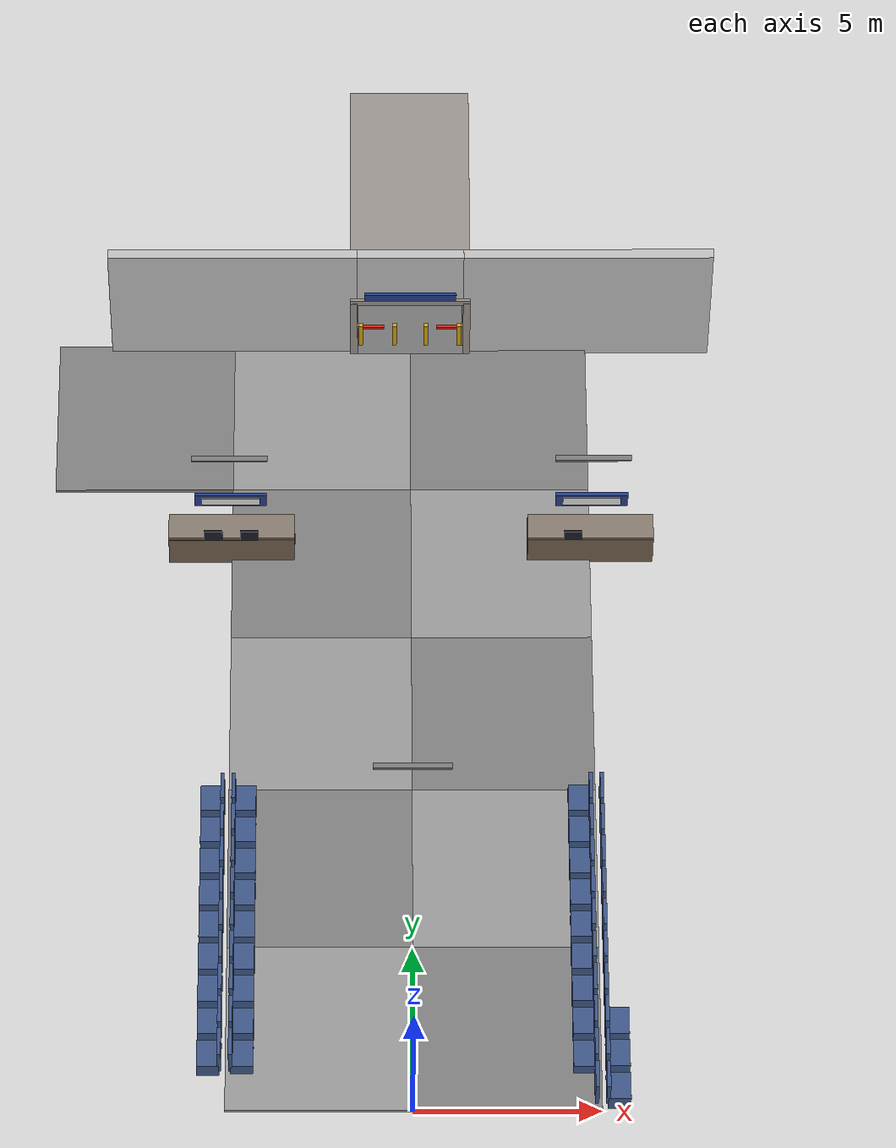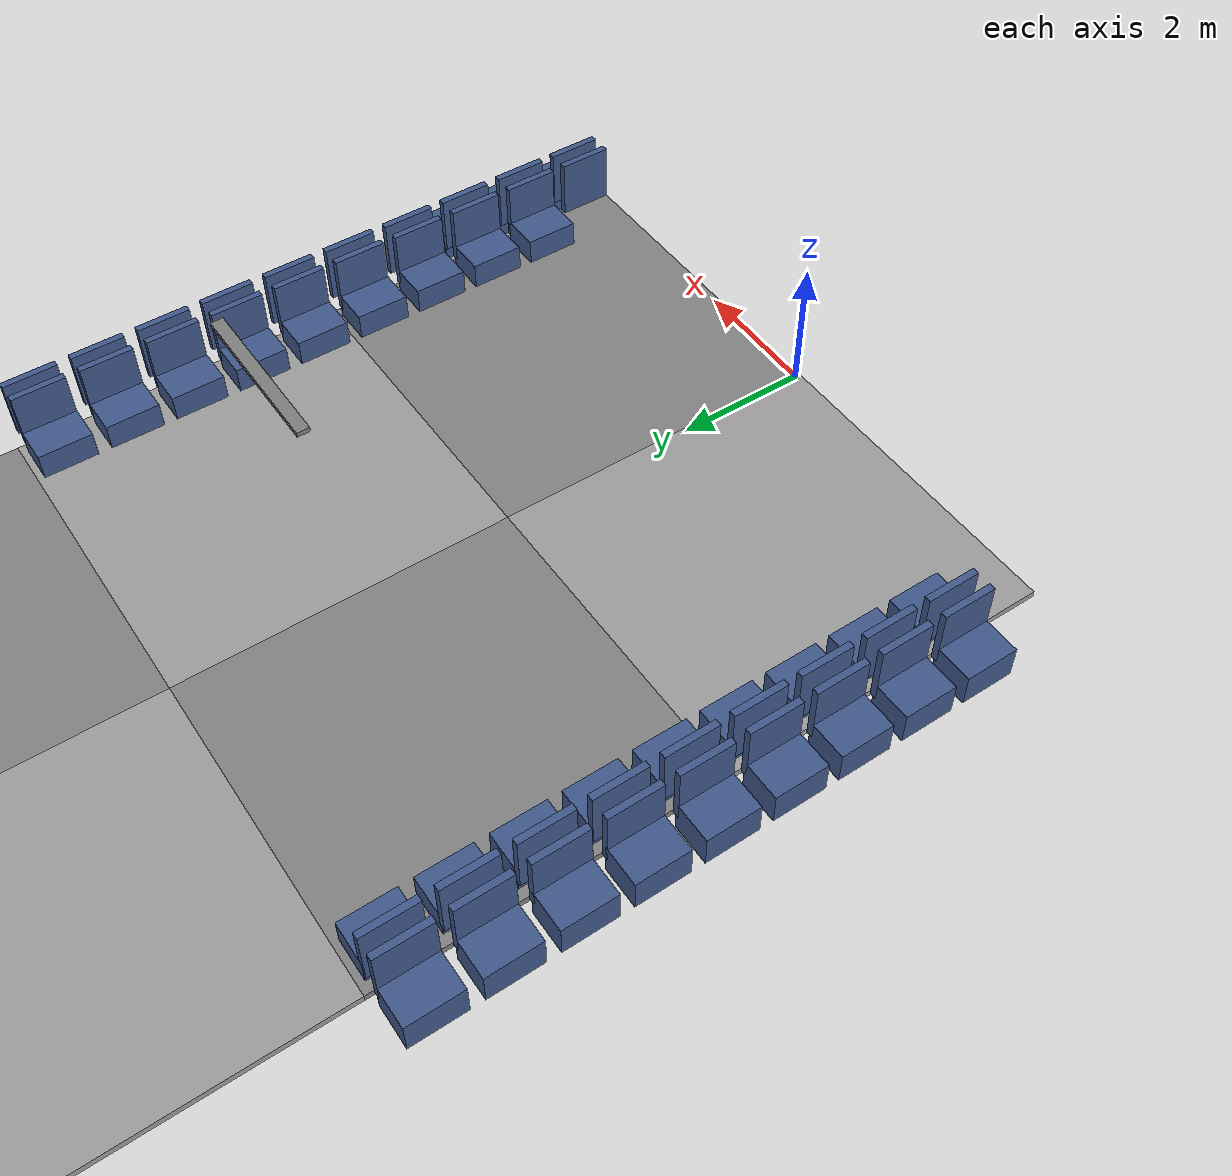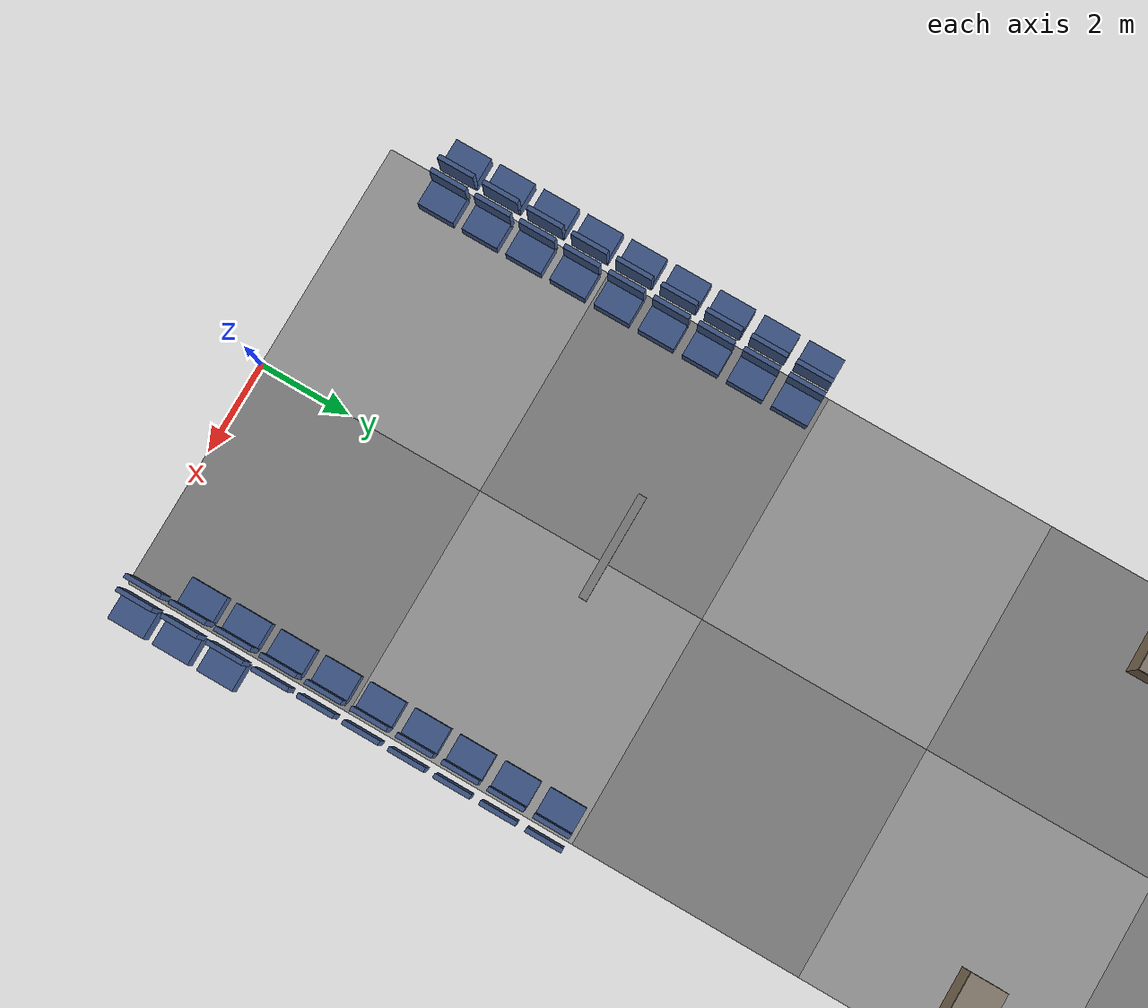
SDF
<sdf version="1.10">
 <world name="my_world">
  <model name="vtile_3_9">
   <static>true</static>
   <pose>-7.5 22.5 0.05 0 0 0</pose>
   <link name="link">
    <visual name="vis">
     <geometry><box><size>5 5 0.1</size></box></geometry>
     <material><ambient>0.52 0.52 0.52 1</ambient><diffuse>0.52 0.52 0.52 1</diffuse></material>
    </visual>
   </link>
  </model>
  <model name="vtile_4_5">
   <static>true</static>
   <pose>-2.5 2.5 0.05 0 0 0</pose>
   <link name="link">
    <visual name="vis">
     <geometry><box><size>5 5 0.1</size></box></geometry>
     <material><ambient>0.62 0.62 0.62 1</ambient><diffuse>0.62 0.62 0.62 1</diffuse></material>
    </visual>
   </link>
  </model>
  <model name="vtile_4_6">
   <static>true</static>
   <pose>-2.5 7.5 0.05 0 0 0</pose>
   <link name="link">
    <visual name="vis">
     <geometry><box><size>5 5 0.1</size></box></geometry>
     <material><ambient>0.52 0.52 0.52 1</ambient><diffuse>0.52 0.52 0.52 1</diffuse></material>
    </visual>
   </link>
  </model>
  <model name="vtile_4_7">
   <static>true</static>
   <pose>-2.5 12.5 0.05 0 0 0</pose>
   <link name="link">
    <visual name="vis">
     <geometry><box><size>5 5 0.1</size></box></geometry>
     <material><ambient>0.62 0.62 0.62 1</ambient><diffuse>0.62 0.62 0.62 1</diffuse></material>
    </visual>
   </link>
  </model>
  <model name="vtile_4_8">
   <static>true</static>
   <pose>-2.5 17.5 0.05 0 0 0</pose>
   <link name="link">
    <visual name="vis">
     <geometry><box><size>5 5 0.1</size></box></geometry>
     <material><ambient>0.52 0.52 0.52 1</ambient><diffuse>0.52 0.52 0.52 1</diffuse></material>
    </visual>
   </link>
  </model>
  <model name="vtile_4_9">
   <static>true</static>
   <pose>-2.5 22.5 0.05 0 0 0</pose>
   <link name="link">
    <visual name="vis">
     <geometry><box><size>5 5 0.1</size></box></geometry>
     <material><ambient>0.62 0.62 0.62 1</ambient><diffuse>0.62 0.62 0.62 1</diffuse></material>
    </visual>
   </link>
  </model>
  <model name="vtile_5_5">
   <static>true</static>
   <pose>2.5 2.5 0.05 0 0 0</pose>
   <link name="link">
    <visual name="vis">
     <geometry><box><size>5 5 0.1</size></box></geometry>
     <material><ambient>0.52 0.52 0.52 1</ambient><diffuse>0.52 0.52 0.52 1</diffuse></material>
    </visual>
   </link>
  </model>
  <model name="vtile_5_6">
   <static>true</static>
   <pose>2.5 7.5 0.05 0 0 0</pose>
   <link name="link">
    <visual name="vis">
     <geometry><box><size>5 5 0.1</size></box></geometry>
     <material><ambient>0.62 0.62 0.62 1</ambient><diffuse>0.62 0.62 0.62 1</diffuse></material>
    </visual>
   </link>
  </model>
  <model name="vtile_5_7">
   <static>true</static>
   <pose>2.5 12.5 0.05 0 0 0</pose>
   <link name="link">
    <visual name="vis">
     <geometry><box><size>5 5 0.1</size></box></geometry>
     <material><ambient>0.52 0.52 0.52 1</ambient><diffuse>0.52 0.52 0.52 1</diffuse></material>
    </visual>
   </link>
  </model>
  <model name="vtile_5_8">
   <static>true</static>
   <pose>2.5 17.5 0.05 0 0 0</pose>
   <link name="link">
    <visual name="vis">
     <geometry><box><size>5 5 0.1</size></box></geometry>
     <material><ambient>0.62 0.62 0.62 1</ambient><diffuse>0.62 0.62 0.62 1</diffuse></material>
    </visual>
   </link>
  </model>
  <model name="vtile_5_9">
   <static>true</static>
   <pose>2.5 22.5 0.05 0 0 0</pose>
   <link name="link">
    <visual name="vis">
     <geometry><box><size>5 5 0.1</size></box></geometry>
     <material><ambient>0.52 0.52 0.52 1</ambient><diffuse>0.52 0.52 0.52 1</diffuse></material>
    </visual>
   </link>
  </model>
  <model name="wall_north_2">
   <static>true</static>
   <pose>-5.0 25 2.25 0 0 0</pose>
   <link name="link">
    <collision name="col"><geometry><box><size>7.0 0.3 4.5</size></box></geometry></collision>
    <visual name="vis">
     <geometry><box><size>7.0 0.3 4.5</size></box></geometry>
     <material><ambient>0.78 0.78 0.78 1</ambient><diffuse>0.78 0.78 0.78 1</diffuse></material>
    </visual>
   </link>
  </model>
  <model name="wall_north_3">
   <static>true</static>
   <pose>5.0 25 2.25 0 0 0</pose>
   <link name="link">
    <collision name="col"><geometry><box><size>7.0 0.3 4.5</size></box></geometry></collision>
    <visual name="vis">
     <geometry><box><size>7.0 0.3 4.5</size></box></geometry>
     <material><ambient>0.78 0.78 0.78 1</ambient><diffuse>0.78 0.78 0.78 1</diffuse></material>
    </visual>
   </link>
  </model>
  <model name="wall_north_top_0">
   <static>true</static>
   <pose>0 25 3.5 0 0 0</pose>
   <link name="link">
    <collision name="col"><geometry><box><size>3.0 0.3 2.0</size></box></geometry></collision>
    <visual name="vis">
     <geometry><box><size>3.0 0.3 2.0</size></box></geometry>
     <material><ambient>0.78 0.78 0.78 1</ambient><diffuse>0.78 0.78 0.78 1</diffuse></material>
    </visual>
   </link>
  </model>
  <model name="gate_a2_counter">
   <static>true</static>
   <pose>-5.0 18.0 0.5500 0 0 0</pose>
   <link name="link">
    <collision name="col"><geometry><box><size>3.5 0.8 1.1</size></box></geometry></collision>
    <visual name="vis">
     <geometry><box><size>3.5 0.8 1.1</size></box></geometry>
     <material><ambient>0.45 0.38 0.3 1</ambient><diffuse>0.45 0.38 0.3 1</diffuse></material>
    </visual>
   </link>
  </model>
  <model name="gate_a2_counter_top">
   <static>true</static>
   <pose>-5.0 18.0 1.1500 0 0 0</pose>
   <link name="link">
    <collision name="col"><geometry><box><size>3.5 0.8 0.08</size></box></geometry></collision>
    <visual name="vis">
     <geometry><box><size>3.5 0.8 0.08</size></box></geometry>
     <material><ambient>0.55 0.5 0.45 1</ambient><diffuse>0.55 0.5 0.45 1</diffuse></material>
    </visual>
   </link>
  </model>
  <model name="gate_a2_monitor">
   <static>true</static>
   <pose>-5.5 17.55 1.4000 0 0 0</pose>
   <link name="link">
    <visual name="vis">
     <geometry><box><size>0.5 0.05 0.4</size></box></geometry>
     <material><ambient>0.1 0.1 0.15 1</ambient><diffuse>0.1 0.1 0.15 1</diffuse></material>
    </visual>
   </link>
  </model>
  <model name="gate_a2_monitor2">
   <static>true</static>
   <pose>-4.5 17.55 1.4000 0 0 0</pose>
   <link name="link">
    <visual name="vis">
     <geometry><box><size>0.5 0.05 0.4</size></box></geometry>
     <material><ambient>0.1 0.1 0.15 1</ambient><diffuse>0.1 0.1 0.15 1</diffuse></material>
    </visual>
   </link>
  </model>
  <model name="gate_a2_sign">
   <static>true</static>
   <pose>-5.0 18.0 2.5000 0 0 0</pose>
   <link name="link">
    <visual name="vis">
     <geometry><box><size>2.0 0.1 0.5</size></box></geometry>
     <material><ambient>0.15 0.25 0.55 1</ambient><diffuse>0.15 0.25 0.55 1</diffuse></material>
    </visual>
   </link>
  </model>
  <model name="gate_a2_sign_text">
   <static>true</static>
   <pose>-5.0 17.94 2.5000 0 0 0</pose>
   <link name="link">
    <visual name="vis">
     <geometry><box><size>1.6 0.05 0.3</size></box></geometry>
     <material><ambient>0.9 0.9 0.9 1</ambient><diffuse>0.9 0.9 0.9 1</diffuse></material>
    </visual>
   </link>
  </model>
  <model name="gate_a3_counter">
   <static>true</static>
   <pose>5.0 18.00 0.5500 0 0 0</pose>
   <link name="link">
    <collision name="col"><geometry><box><size>3.5 0.8 1.1</size></box></geometry></collision>
    <visual name="vis">
     <geometry><box><size>3.5 0.8 1.1</size></box></geometry>
     <material><ambient>0.45 0.38 0.3 1</ambient><diffuse>0.45 0.38 0.3 1</diffuse></material>
    </visual>
   </link>
  </model>
  <model name="gate_a3_counter_top">
   <static>true</static>
   <pose>5.0 18.00 1.1500 0 0 0</pose>
   <link name="link">
    <collision name="col"><geometry><box><size>3.5 0.8 0.08</size></box></geometry></collision>
    <visual name="vis">
     <geometry><box><size>3.5 0.8 0.08</size></box></geometry>
     <material><ambient>0.55 0.5 0.45 1</ambient><diffuse>0.55 0.5 0.45 1</diffuse></material>
    </visual>
   </link>
  </model>
  <model name="gate_a3_monitor2">
   <static>true</static>
   <pose>4.5 17.55 1.4000 0 0 0</pose>
   <link name="link">
    <visual name="vis">
     <geometry><box><size>0.5 0.05 0.4</size></box></geometry>
     <material><ambient>0.1 0.1 0.15 1</ambient><diffuse>0.1 0.1 0.15 1</diffuse></material>
    </visual>
   </link>
  </model>
  <model name="gate_a3_sign">
   <static>true</static>
   <pose>5.0 18.00 2.5000 0 0 0</pose>
   <link name="link">
    <visual name="vis">
     <geometry><box><size>2.0 0.1 0.5</size></box></geometry>
     <material><ambient>0.15 0.25 0.55 1</ambient><diffuse>0.15 0.25 0.55 1</diffuse></material>
    </visual>
   </link>
  </model>
  <model name="gate_a3_sign_text">
   <static>true</static>
   <pose>5.0 17.94 2.5000 0 0 0</pose>
   <link name="link">
    <visual name="vis">
     <geometry><box><size>1.6 0.05 0.3</size></box></geometry>
     <material><ambient>0.9 0.9 0.9 1</ambient><diffuse>0.9 0.9 0.9 1</diffuse></material>
    </visual>
   </link>
  </model>
  <model name="lamp_c_0_strip">
   <static>true</static>
   <pose>0 8 4.42 0 0 0</pose>
   <link name="link">
    <visual name="strip">
     <geometry><box><size>2.0 0.12 0.04</size></box></geometry>
     <material>
      <ambient>0.95 0.95 0.88 1</ambient>
      <diffuse>0.95 0.95 0.88 1</diffuse>
      <emissive>0.35 0.35 0.30 1</emissive>
     </material>
    </visual>
    <visual name="housing">
     <pose>0 0 0.03 0 0 0</pose>
     <geometry><box><size>2.1 0.16 0.06</size></box></geometry>
     <material><ambient>0.5 0.5 0.5 1</ambient><diffuse>0.5 0.5 0.5 1</diffuse></material>
    </visual>
   </link>
  </model>
  <model name="lamp_gate_a2_strip">
   <static>true</static>
   <pose>-5.0 18.0 4.42 0 0 0</pose>
   <link name="link">
    <visual name="strip">
     <geometry><box><size>2.0 0.12 0.04</size></box></geometry>
     <material>
      <ambient>0.95 0.95 0.88 1</ambient>
      <diffuse>0.95 0.95 0.88 1</diffuse>
      <emissive>0.35 0.35 0.30 1</emissive>
     </material>
    </visual>
    <visual name="housing">
     <pose>0 0 0.03 0 0 0</pose>
     <geometry><box><size>2.1 0.16 0.06</size></box></geometry>
     <material><ambient>0.5 0.5 0.5 1</ambient><diffuse>0.5 0.5 0.5 1</diffuse></material>
    </visual>
   </link>
  </model>
  <model name="lamp_gate_a3_strip">
   <static>true</static>
   <pose>5.0 18 4.42 0 0 0</pose>
   <link name="link">
    <visual name="strip">
     <geometry><box><size>2.0 0.12 0.04</size></box></geometry>
     <material>
      <ambient>0.95 0.95 0.88 1</ambient>
      <diffuse>0.95 0.95 0.88 1</diffuse>
      <emissive>0.35 0.35 0.30 1</emissive>
     </material>
    </visual>
    <visual name="housing">
     <pose>0 0 0.03 0 0 0</pose>
     <geometry><box><size>2.1 0.16 0.06</size></box></geometry>
     <material><ambient>0.5 0.5 0.5 1</ambient><diffuse>0.5 0.5 0.5 1</diffuse></material>
    </visual>
   </link>
  </model>
  <model name="tunnel_a2_wall_l">
   <static>true</static>
   <pose>-1.6 28.5 1.3 0 0 0</pose>
   <link name="link">
    <collision name="col"><geometry><box><size>0.2 7.5 2.4</size></box></geometry></collision>
    <visual name="vis">
     <geometry><box><size>0.2 7.5 2.4</size></box></geometry>
     <material><ambient>0.62 0.60 0.58 1</ambient><diffuse>0.62 0.60 0.58 1</diffuse></material>
    </visual>
   </link>
  </model>
  <model name="tunnel_a2_wall_r">
   <static>true</static>
   <pose>1.6 28.5 1.3 0 0 0</pose>
   <link name="link">
    <collision name="col"><geometry><box><size>0.2 7.5 2.4</size></box></geometry></collision>
    <visual name="vis">
     <geometry><box><size>0.2 7.5 2.4</size></box></geometry>
     <material><ambient>0.62 0.60 0.58 1</ambient><diffuse>0.62 0.60 0.58 1</diffuse></material>
    </visual>
   </link>
  </model>
  <model name="tunnel_a2_roof">
   <static>true</static>
   <pose>0 28.5 2.5 0 0 0</pose>
   <link name="link">
    <collision name="col"><geometry><box><size>3.4 7.5 0.2</size></box></geometry></collision>
    <visual name="vis">
     <geometry><box><size>3.4 7.5 0.2</size></box></geometry>
     <material><ambient>0.62 0.60 0.58 1</ambient><diffuse>0.62 0.60 0.58 1</diffuse></material>
    </visual>
   </link>
  </model>
  <model name="tunnel_a2_floor">
   <static>true</static>
   <pose>0 28.5 0.06 0 0 0</pose>
   <link name="link">
    <collision name="col"><geometry><box><size>3.0 7.5 0.1</size></box></geometry></collision>
    <visual name="vis">
     <geometry><box><size>3.0 7.5 0.1</size></box></geometry>
     <material><ambient>0.48 0.48 0.48 1</ambient><diffuse>0.48 0.48 0.48 1</diffuse></material>
    </visual>
   </link>
  </model>
  <model name="tunnel_a2_sign">
   <static>true</static>
   <pose>0 24.8 2.7 0 0 0</pose>
   <link name="link">
    <visual name="vis">
     <geometry><box><size>2.6 0.08 0.35</size></box></geometry>
     <material><ambient>0.15 0.25 0.55 1</ambient><diffuse>0.15 0.25 0.55 1</diffuse></material>
    </visual>
   </link>
  </model>
  <model name="cluster_6_a_1">
   <static>true</static>
   <pose>-5.45 1.50 0.25 0 0 0</pose>
   <link name="link">
    <collision name="col"><geometry><box><size>0.6 0.8 0.5</size></box></geometry></collision>
    <visual name="vis">
     <geometry><box><size>0.6 0.8 0.5</size></box></geometry>
     <material><ambient>0.25 0.35 0.55 1</ambient><diffuse>0.25 0.35 0.55 1</diffuse></material>
    </visual>
   </link>
  </model>
  <model name="cluster_6_a_1_back">
   <static>true</static>
   <pose>-5.15 1.50 0.7 0 0 0</pose>
   <link name="link">
    <collision name="col"><geometry><box><size>0.1 0.8 0.9</size></box></geometry></collision>
    <visual name="vis">
     <geometry><box><size>0.1 0.8 0.9</size></box></geometry>
     <material><ambient>0.25 0.35 0.55 1</ambient><diffuse>0.25 0.35 0.55 1</diffuse></material>
    </visual>
   </link>
  </model>
  <model name="cluster_6_b_1">
   <static>true</static>
   <pose>-4.55 1.50 0.25 0 0 0</pose>
   <link name="link">
    <collision name="col"><geometry><box><size>0.6 0.8 0.5</size></box></geometry></collision>
    <visual name="vis">
     <geometry><box><size>0.6 0.8 0.5</size></box></geometry>
     <material><ambient>0.25 0.35 0.55 1</ambient><diffuse>0.25 0.35 0.55 1</diffuse></material>
    </visual>
   </link>
  </model>
  <model name="cluster_6_b_1_back">
   <static>true</static>
   <pose>-4.85 1.50 0.7 0 0 0</pose>
   <link name="link">
    <collision name="col"><geometry><box><size>0.1 0.8 0.9</size></box></geometry></collision>
    <visual name="vis">
     <geometry><box><size>0.1 0.8 0.9</size></box></geometry>
     <material><ambient>0.25 0.35 0.55 1</ambient><diffuse>0.25 0.35 0.55 1</diffuse></material>
    </visual>
   </link>
  </model>
  <model name="cluster_6_a_2">
   <static>true</static>
   <pose>-5.45 2.50 0.25 0 0 0</pose>
   <link name="link">
    <collision name="col"><geometry><box><size>0.6 0.8 0.5</size></box></geometry></collision>
    <visual name="vis">
     <geometry><box><size>0.6 0.8 0.5</size></box></geometry>
     <material><ambient>0.25 0.35 0.55 1</ambient><diffuse>0.25 0.35 0.55 1</diffuse></material>
    </visual>
   </link>
  </model>
  <model name="cluster_6_a_2_back">
   <static>true</static>
   <pose>-5.15 2.50 0.7 0 0 0</pose>
   <link name="link">
    <collision name="col"><geometry><box><size>0.1 0.8 0.9</size></box></geometry></collision>
    <visual name="vis">
     <geometry><box><size>0.1 0.8 0.9</size></box></geometry>
     <material><ambient>0.25 0.35 0.55 1</ambient><diffuse>0.25 0.35 0.55 1</diffuse></material>
    </visual>
   </link>
  </model>
  <model name="cluster_6_b_2">
   <static>true</static>
   <pose>-4.55 2.50 0.25 0 0 0</pose>
   <link name="link">
    <collision name="col"><geometry><box><size>0.6 0.8 0.5</size></box></geometry></collision>
    <visual name="vis">
     <geometry><box><size>0.6 0.8 0.5</size></box></geometry>
     <material><ambient>0.25 0.35 0.55 1</ambient><diffuse>0.25 0.35 0.55 1</diffuse></material>
    </visual>
   </link>
  </model>
  <model name="cluster_6_b_2_back">
   <static>true</static>
   <pose>-4.85 2.50 0.7 0 0 0</pose>
   <link name="link">
    <collision name="col"><geometry><box><size>0.1 0.8 0.9</size></box></geometry></collision>
    <visual name="vis">
     <geometry><box><size>0.1 0.8 0.9</size></box></geometry>
     <material><ambient>0.25 0.35 0.55 1</ambient><diffuse>0.25 0.35 0.55 1</diffuse></material>
    </visual>
   </link>
  </model>
  <model name="cluster_6_a_3">
   <static>true</static>
   <pose>-5.45 3.50 0.25 0 0 0</pose>
   <link name="link">
    <collision name="col"><geometry><box><size>0.6 0.8 0.5</size></box></geometry></collision>
    <visual name="vis">
     <geometry><box><size>0.6 0.8 0.5</size></box></geometry>
     <material><ambient>0.25 0.35 0.55 1</ambient><diffuse>0.25 0.35 0.55 1</diffuse></material>
    </visual>
   </link>
  </model>
  <model name="cluster_6_a_3_back">
   <static>true</static>
   <pose>-5.15 3.50 0.7 0 0 0</pose>
   <link name="link">
    <collision name="col"><geometry><box><size>0.1 0.8 0.9</size></box></geometry></collision>
    <visual name="vis">
     <geometry><box><size>0.1 0.8 0.9</size></box></geometry>
     <material><ambient>0.25 0.35 0.55 1</ambient><diffuse>0.25 0.35 0.55 1</diffuse></material>
    </visual>
   </link>
  </model>
  <model name="cluster_6_b_3">
   <static>true</static>
   <pose>-4.55 3.50 0.25 0 0 0</pose>
   <link name="link">
    <collision name="col"><geometry><box><size>0.6 0.8 0.5</size></box></geometry></collision>
    <visual name="vis">
     <geometry><box><size>0.6 0.8 0.5</size></box></geometry>
     <material><ambient>0.25 0.35 0.55 1</ambient><diffuse>0.25 0.35 0.55 1</diffuse></material>
    </visual>
   </link>
  </model>
  <model name="cluster_6_b_3_back">
   <static>true</static>
   <pose>-4.85 3.50 0.7 0 0 0</pose>
   <link name="link">
    <collision name="col"><geometry><box><size>0.1 0.8 0.9</size></box></geometry></collision>
    <visual name="vis">
     <geometry><box><size>0.1 0.8 0.9</size></box></geometry>
     <material><ambient>0.25 0.35 0.55 1</ambient><diffuse>0.25 0.35 0.55 1</diffuse></material>
    </visual>
   </link>
  </model>
  <model name="cluster_6_a_4">
   <static>true</static>
   <pose>-5.45 4.50 0.25 0 0 0</pose>
   <link name="link">
    <collision name="col"><geometry><box><size>0.6 0.8 0.5</size></box></geometry></collision>
    <visual name="vis">
     <geometry><box><size>0.6 0.8 0.5</size></box></geometry>
     <material><ambient>0.25 0.35 0.55 1</ambient><diffuse>0.25 0.35 0.55 1</diffuse></material>
    </visual>
   </link>
  </model>
  <model name="cluster_6_a_4_back">
   <static>true</static>
   <pose>-5.15 4.50 0.7 0 0 0</pose>
   <link name="link">
    <collision name="col"><geometry><box><size>0.1 0.8 0.9</size></box></geometry></collision>
    <visual name="vis">
     <geometry><box><size>0.1 0.8 0.9</size></box></geometry>
     <material><ambient>0.25 0.35 0.55 1</ambient><diffuse>0.25 0.35 0.55 1</diffuse></material>
    </visual>
   </link>
  </model>
  <model name="cluster_6_b_4">
   <static>true</static>
   <pose>-4.55 4.50 0.25 0 0 0</pose>
   <link name="link">
    <collision name="col"><geometry><box><size>0.6 0.8 0.5</size></box></geometry></collision>
    <visual name="vis">
     <geometry><box><size>0.6 0.8 0.5</size></box></geometry>
     <material><ambient>0.25 0.35 0.55 1</ambient><diffuse>0.25 0.35 0.55 1</diffuse></material>
    </visual>
   </link>
  </model>
  <model name="cluster_6_b_4_back">
   <static>true</static>
   <pose>-4.85 4.50 0.7 0 0 0</pose>
   <link name="link">
    <collision name="col"><geometry><box><size>0.1 0.8 0.9</size></box></geometry></collision>
    <visual name="vis">
     <geometry><box><size>0.1 0.8 0.9</size></box></geometry>
     <material><ambient>0.25 0.35 0.55 1</ambient><diffuse>0.25 0.35 0.55 1</diffuse></material>
    </visual>
   </link>
  </model>
  <model name="cluster_6_a_5">
   <static>true</static>
   <pose>-5.45 5.50 0.25 0 0 0</pose>
   <link name="link">
    <collision name="col"><geometry><box><size>0.6 0.8 0.5</size></box></geometry></collision>
    <visual name="vis">
     <geometry><box><size>0.6 0.8 0.5</size></box></geometry>
     <material><ambient>0.25 0.35 0.55 1</ambient><diffuse>0.25 0.35 0.55 1</diffuse></material>
    </visual>
   </link>
  </model>
  <model name="cluster_6_a_5_back">
   <static>true</static>
   <pose>-5.15 5.50 0.7 0 0 0</pose>
   <link name="link">
    <collision name="col"><geometry><box><size>0.1 0.8 0.9</size></box></geometry></collision>
    <visual name="vis">
     <geometry><box><size>0.1 0.8 0.9</size></box></geometry>
     <material><ambient>0.25 0.35 0.55 1</ambient><diffuse>0.25 0.35 0.55 1</diffuse></material>
    </visual>
   </link>
  </model>
  <model name="cluster_6_b_5">
   <static>true</static>
   <pose>-4.55 5.50 0.25 0 0 0</pose>
   <link name="link">
    <collision name="col"><geometry><box><size>0.6 0.8 0.5</size></box></geometry></collision>
    <visual name="vis">
     <geometry><box><size>0.6 0.8 0.5</size></box></geometry>
     <material><ambient>0.25 0.35 0.55 1</ambient><diffuse>0.25 0.35 0.55 1</diffuse></material>
    </visual>
   </link>
  </model>
  <model name="cluster_6_b_5_back">
   <static>true</static>
   <pose>-4.85 5.50 0.7 0 0 0</pose>
   <link name="link">
    <collision name="col"><geometry><box><size>0.1 0.8 0.9</size></box></geometry></collision>
    <visual name="vis">
     <geometry><box><size>0.1 0.8 0.9</size></box></geometry>
     <material><ambient>0.25 0.35 0.55 1</ambient><diffuse>0.25 0.35 0.55 1</diffuse></material>
    </visual>
   </link>
  </model>
  <model name="cluster_6_a_6">
   <static>true</static>
   <pose>-5.45 6.50 0.25 0 0 0</pose>
   <link name="link">
    <collision name="col"><geometry><box><size>0.6 0.8 0.5</size></box></geometry></collision>
    <visual name="vis">
     <geometry><box><size>0.6 0.8 0.5</size></box></geometry>
     <material><ambient>0.25 0.35 0.55 1</ambient><diffuse>0.25 0.35 0.55 1</diffuse></material>
    </visual>
   </link>
  </model>
  <model name="cluster_6_a_6_back">
   <static>true</static>
   <pose>-5.15 6.50 0.7 0 0 0</pose>
   <link name="link">
    <collision name="col"><geometry><box><size>0.1 0.8 0.9</size></box></geometry></collision>
    <visual name="vis">
     <geometry><box><size>0.1 0.8 0.9</size></box></geometry>
     <material><ambient>0.25 0.35 0.55 1</ambient><diffuse>0.25 0.35 0.55 1</diffuse></material>
    </visual>
   </link>
  </model>
  <model name="cluster_6_b_6">
   <static>true</static>
   <pose>-4.55 6.50 0.25 0 0 0</pose>
   <link name="link">
    <collision name="col"><geometry><box><size>0.6 0.8 0.5</size></box></geometry></collision>
    <visual name="vis">
     <geometry><box><size>0.6 0.8 0.5</size></box></geometry>
     <material><ambient>0.25 0.35 0.55 1</ambient><diffuse>0.25 0.35 0.55 1</diffuse></material>
    </visual>
   </link>
  </model>
  <model name="cluster_6_b_6_back">
   <static>true</static>
   <pose>-4.85 6.50 0.7 0 0 0</pose>
   <link name="link">
    <collision name="col"><geometry><box><size>0.1 0.8 0.9</size></box></geometry></collision>
    <visual name="vis">
     <geometry><box><size>0.1 0.8 0.9</size></box></geometry>
     <material><ambient>0.25 0.35 0.55 1</ambient><diffuse>0.25 0.35 0.55 1</diffuse></material>
    </visual>
   </link>
  </model>
  <model name="cluster_6_a_7">
   <static>true</static>
   <pose>-5.45 7.50 0.25 0 0 0</pose>
   <link name="link">
    <collision name="col"><geometry><box><size>0.6 0.8 0.5</size></box></geometry></collision>
    <visual name="vis">
     <geometry><box><size>0.6 0.8 0.5</size></box></geometry>
     <material><ambient>0.25 0.35 0.55 1</ambient><diffuse>0.25 0.35 0.55 1</diffuse></material>
    </visual>
   </link>
  </model>
  <model name="cluster_6_a_7_back">
   <static>true</static>
   <pose>-5.15 7.50 0.7 0 0 0</pose>
   <link name="link">
    <collision name="col"><geometry><box><size>0.1 0.8 0.9</size></box></geometry></collision>
    <visual name="vis">
     <geometry><box><size>0.1 0.8 0.9</size></box></geometry>
     <material><ambient>0.25 0.35 0.55 1</ambient><diffuse>0.25 0.35 0.55 1</diffuse></material>
    </visual>
   </link>
  </model>
  <model name="cluster_6_b_7">
   <static>true</static>
   <pose>-4.55 7.50 0.25 0 0 0</pose>
   <link name="link">
    <collision name="col"><geometry><box><size>0.6 0.8 0.5</size></box></geometry></collision>
    <visual name="vis">
     <geometry><box><size>0.6 0.8 0.5</size></box></geometry>
     <material><ambient>0.25 0.35 0.55 1</ambient><diffuse>0.25 0.35 0.55 1</diffuse></material>
    </visual>
   </link>
  </model>
  <model name="cluster_6_b_7_back">
   <static>true</static>
   <pose>-4.85 7.50 0.7 0 0 0</pose>
   <link name="link">
    <collision name="col"><geometry><box><size>0.1 0.8 0.9</size></box></geometry></collision>
    <visual name="vis">
     <geometry><box><size>0.1 0.8 0.9</size></box></geometry>
     <material><ambient>0.25 0.35 0.55 1</ambient><diffuse>0.25 0.35 0.55 1</diffuse></material>
    </visual>
   </link>
  </model>
  <model name="cluster_6_a_8">
   <static>true</static>
   <pose>-5.45 8.50 0.25 0 0 0</pose>
   <link name="link">
    <collision name="col"><geometry><box><size>0.6 0.8 0.5</size></box></geometry></collision>
    <visual name="vis">
     <geometry><box><size>0.6 0.8 0.5</size></box></geometry>
     <material><ambient>0.25 0.35 0.55 1</ambient><diffuse>0.25 0.35 0.55 1</diffuse></material>
    </visual>
   </link>
  </model>
  <model name="cluster_6_a_8_back">
   <static>true</static>
   <pose>-5.15 8.50 0.7 0 0 0</pose>
   <link name="link">
    <collision name="col"><geometry><box><size>0.1 0.8 0.9</size></box></geometry></collision>
    <visual name="vis">
     <geometry><box><size>0.1 0.8 0.9</size></box></geometry>
     <material><ambient>0.25 0.35 0.55 1</ambient><diffuse>0.25 0.35 0.55 1</diffuse></material>
    </visual>
   </link>
  </model>
  <model name="cluster_6_b_8">
   <static>true</static>
   <pose>-4.55 8.50 0.25 0 0 0</pose>
   <link name="link">
    <collision name="col"><geometry><box><size>0.6 0.8 0.5</size></box></geometry></collision>
    <visual name="vis">
     <geometry><box><size>0.6 0.8 0.5</size></box></geometry>
     <material><ambient>0.25 0.35 0.55 1</ambient><diffuse>0.25 0.35 0.55 1</diffuse></material>
    </visual>
   </link>
  </model>
  <model name="cluster_6_b_8_back">
   <static>true</static>
   <pose>-4.85 8.50 0.7 0 0 0</pose>
   <link name="link">
    <collision name="col"><geometry><box><size>0.1 0.8 0.9</size></box></geometry></collision>
    <visual name="vis">
     <geometry><box><size>0.1 0.8 0.9</size></box></geometry>
     <material><ambient>0.25 0.35 0.55 1</ambient><diffuse>0.25 0.35 0.55 1</diffuse></material>
    </visual>
   </link>
  </model>
  <model name="cluster_6_a_9">
   <static>true</static>
   <pose>-5.45 9.50 0.25 0 0 0</pose>
   <link name="link">
    <collision name="col"><geometry><box><size>0.6 0.8 0.5</size></box></geometry></collision>
    <visual name="vis">
     <geometry><box><size>0.6 0.8 0.5</size></box></geometry>
     <material><ambient>0.25 0.35 0.55 1</ambient><diffuse>0.25 0.35 0.55 1</diffuse></material>
    </visual>
   </link>
  </model>
  <model name="cluster_6_a_9_back">
   <static>true</static>
   <pose>-5.15 9.50 0.7 0 0 0</pose>
   <link name="link">
    <collision name="col"><geometry><box><size>0.1 0.8 0.9</size></box></geometry></collision>
    <visual name="vis">
     <geometry><box><size>0.1 0.8 0.9</size></box></geometry>
     <material><ambient>0.25 0.35 0.55 1</ambient><diffuse>0.25 0.35 0.55 1</diffuse></material>
    </visual>
   </link>
  </model>
  <model name="cluster_6_b_9">
   <static>true</static>
   <pose>-4.55 9.50 0.25 0 0 0</pose>
   <link name="link">
    <collision name="col"><geometry><box><size>0.6 0.8 0.5</size></box></geometry></collision>
    <visual name="vis">
     <geometry><box><size>0.6 0.8 0.5</size></box></geometry>
     <material><ambient>0.25 0.35 0.55 1</ambient><diffuse>0.25 0.35 0.55 1</diffuse></material>
    </visual>
   </link>
  </model>
  <model name="cluster_6_b_9_back">
   <static>true</static>
   <pose>-4.85 9.50 0.7 0 0 0</pose>
   <link name="link">
    <collision name="col"><geometry><box><size>0.1 0.8 0.9</size></box></geometry></collision>
    <visual name="vis">
     <geometry><box><size>0.1 0.8 0.9</size></box></geometry>
     <material><ambient>0.25 0.35 0.55 1</ambient><diffuse>0.25 0.35 0.55 1</diffuse></material>
    </visual>
   </link>
  </model>
  <model name="cluster_7_a_0_back">
   <static>true</static>
   <pose>4.85 0.50 0.7 0 0 0</pose>
   <link name="link">
    <collision name="col"><geometry><box><size>0.1 0.8 0.9</size></box></geometry></collision>
    <visual name="vis">
     <geometry><box><size>0.1 0.8 0.9</size></box></geometry>
     <material><ambient>0.25 0.35 0.55 1</ambient><diffuse>0.25 0.35 0.55 1</diffuse></material>
    </visual>
   </link>
  </model>
  <model name="cluster_7_b_0">
   <static>true</static>
   <pose>5.45 0.50 0.25 0 0 0</pose>
   <link name="link">
    <collision name="col"><geometry><box><size>0.6 0.8 0.5</size></box></geometry></collision>
    <visual name="vis">
     <geometry><box><size>0.6 0.8 0.5</size></box></geometry>
     <material><ambient>0.25 0.35 0.55 1</ambient><diffuse>0.25 0.35 0.55 1</diffuse></material>
    </visual>
   </link>
  </model>
  <model name="cluster_7_b_0_back">
   <static>true</static>
   <pose>5.15 0.50 0.7 0 0 0</pose>
   <link name="link">
    <collision name="col"><geometry><box><size>0.1 0.8 0.9</size></box></geometry></collision>
    <visual name="vis">
     <geometry><box><size>0.1 0.8 0.9</size></box></geometry>
     <material><ambient>0.25 0.35 0.55 1</ambient><diffuse>0.25 0.35 0.55 1</diffuse></material>
    </visual>
   </link>
  </model>
  <model name="cluster_7_a_1">
   <static>true</static>
   <pose>4.55 1.50 0.25 0 0 0</pose>
   <link name="link">
    <collision name="col"><geometry><box><size>0.6 0.8 0.5</size></box></geometry></collision>
    <visual name="vis">
     <geometry><box><size>0.6 0.8 0.5</size></box></geometry>
     <material><ambient>0.25 0.35 0.55 1</ambient><diffuse>0.25 0.35 0.55 1</diffuse></material>
    </visual>
   </link>
  </model>
  <model name="cluster_7_a_1_back">
   <static>true</static>
   <pose>4.85 1.50 0.7 0 0 0</pose>
   <link name="link">
    <collision name="col"><geometry><box><size>0.1 0.8 0.9</size></box></geometry></collision>
    <visual name="vis">
     <geometry><box><size>0.1 0.8 0.9</size></box></geometry>
     <material><ambient>0.25 0.35 0.55 1</ambient><diffuse>0.25 0.35 0.55 1</diffuse></material>
    </visual>
   </link>
  </model>
  <model name="cluster_7_b_1">
   <static>true</static>
   <pose>5.45 1.50 0.25 0 0 0</pose>
   <link name="link">
    <collision name="col"><geometry><box><size>0.6 0.8 0.5</size></box></geometry></collision>
    <visual name="vis">
     <geometry><box><size>0.6 0.8 0.5</size></box></geometry>
     <material><ambient>0.25 0.35 0.55 1</ambient><diffuse>0.25 0.35 0.55 1</diffuse></material>
    </visual>
   </link>
  </model>
  <model name="cluster_7_b_1_back">
   <static>true</static>
   <pose>5.15 1.50 0.7 0 0 0</pose>
   <link name="link">
    <collision name="col"><geometry><box><size>0.1 0.8 0.9</size></box></geometry></collision>
    <visual name="vis">
     <geometry><box><size>0.1 0.8 0.9</size></box></geometry>
     <material><ambient>0.25 0.35 0.55 1</ambient><diffuse>0.25 0.35 0.55 1</diffuse></material>
    </visual>
   </link>
  </model>
  <model name="cluster_7_a_2">
   <static>true</static>
   <pose>4.55 2.50 0.25 0 0 0</pose>
   <link name="link">
    <collision name="col"><geometry><box><size>0.6 0.8 0.5</size></box></geometry></collision>
    <visual name="vis">
     <geometry><box><size>0.6 0.8 0.5</size></box></geometry>
     <material><ambient>0.25 0.35 0.55 1</ambient><diffuse>0.25 0.35 0.55 1</diffuse></material>
    </visual>
   </link>
  </model>
  <model name="cluster_7_a_2_back">
   <static>true</static>
   <pose>4.85 2.50 0.7 0 0 0</pose>
   <link name="link">
    <collision name="col"><geometry><box><size>0.1 0.8 0.9</size></box></geometry></collision>
    <visual name="vis">
     <geometry><box><size>0.1 0.8 0.9</size></box></geometry>
     <material><ambient>0.25 0.35 0.55 1</ambient><diffuse>0.25 0.35 0.55 1</diffuse></material>
    </visual>
   </link>
  </model>
  <model name="cluster_7_b_2">
   <static>true</static>
   <pose>5.45 2.50 0.25 0 0 0</pose>
   <link name="link">
    <collision name="col"><geometry><box><size>0.6 0.8 0.5</size></box></geometry></collision>
    <visual name="vis">
     <geometry><box><size>0.6 0.8 0.5</size></box></geometry>
     <material><ambient>0.25 0.35 0.55 1</ambient><diffuse>0.25 0.35 0.55 1</diffuse></material>
    </visual>
   </link>
  </model>
  <model name="cluster_7_b_2_back">
   <static>true</static>
   <pose>5.15 2.50 0.7 0 0 0</pose>
   <link name="link">
    <collision name="col"><geometry><box><size>0.1 0.8 0.9</size></box></geometry></collision>
    <visual name="vis">
     <geometry><box><size>0.1 0.8 0.9</size></box></geometry>
     <material><ambient>0.25 0.35 0.55 1</ambient><diffuse>0.25 0.35 0.55 1</diffuse></material>
    </visual>
   </link>
  </model>
  <model name="cluster_7_a_3">
   <static>true</static>
   <pose>4.55 3.50 0.25 0 0 0</pose>
   <link name="link">
    <collision name="col"><geometry><box><size>0.6 0.8 0.5</size></box></geometry></collision>
    <visual name="vis">
     <geometry><box><size>0.6 0.8 0.5</size></box></geometry>
     <material><ambient>0.25 0.35 0.55 1</ambient><diffuse>0.25 0.35 0.55 1</diffuse></material>
    </visual>
   </link>
  </model>
  <model name="cluster_7_a_3_back">
   <static>true</static>
   <pose>4.85 3.50 0.7 0 0 0</pose>
   <link name="link">
    <collision name="col"><geometry><box><size>0.1 0.8 0.9</size></box></geometry></collision>
    <visual name="vis">
     <geometry><box><size>0.1 0.8 0.9</size></box></geometry>
     <material><ambient>0.25 0.35 0.55 1</ambient><diffuse>0.25 0.35 0.55 1</diffuse></material>
    </visual>
   </link>
  </model>
  <model name="cluster_7_b_3_back">
   <static>true</static>
   <pose>5.15 3.50 0.7 0 0 0</pose>
   <link name="link">
    <collision name="col"><geometry><box><size>0.1 0.8 0.9</size></box></geometry></collision>
    <visual name="vis">
     <geometry><box><size>0.1 0.8 0.9</size></box></geometry>
     <material><ambient>0.25 0.35 0.55 1</ambient><diffuse>0.25 0.35 0.55 1</diffuse></material>
    </visual>
   </link>
  </model>
  <model name="cluster_7_a_4">
   <static>true</static>
   <pose>4.55 4.50 0.25 0 0 0</pose>
   <link name="link">
    <collision name="col"><geometry><box><size>0.6 0.8 0.5</size></box></geometry></collision>
    <visual name="vis">
     <geometry><box><size>0.6 0.8 0.5</size></box></geometry>
     <material><ambient>0.25 0.35 0.55 1</ambient><diffuse>0.25 0.35 0.55 1</diffuse></material>
    </visual>
   </link>
  </model>
  <model name="cluster_7_a_4_back">
   <static>true</static>
   <pose>4.85 4.50 0.7 0 0 0</pose>
   <link name="link">
    <collision name="col"><geometry><box><size>0.1 0.8 0.9</size></box></geometry></collision>
    <visual name="vis">
     <geometry><box><size>0.1 0.8 0.9</size></box></geometry>
     <material><ambient>0.25 0.35 0.55 1</ambient><diffuse>0.25 0.35 0.55 1</diffuse></material>
    </visual>
   </link>
  </model>
  <model name="cluster_7_b_4_back">
   <static>true</static>
   <pose>5.15 4.50 0.7 0 0 0</pose>
   <link name="link">
    <collision name="col"><geometry><box><size>0.1 0.8 0.9</size></box></geometry></collision>
    <visual name="vis">
     <geometry><box><size>0.1 0.8 0.9</size></box></geometry>
     <material><ambient>0.25 0.35 0.55 1</ambient><diffuse>0.25 0.35 0.55 1</diffuse></material>
    </visual>
   </link>
  </model>
  <model name="cluster_7_a_5">
   <static>true</static>
   <pose>4.55 5.50 0.25 0 0 0</pose>
   <link name="link">
    <collision name="col"><geometry><box><size>0.6 0.8 0.5</size></box></geometry></collision>
    <visual name="vis">
     <geometry><box><size>0.6 0.8 0.5</size></box></geometry>
     <material><ambient>0.25 0.35 0.55 1</ambient><diffuse>0.25 0.35 0.55 1</diffuse></material>
    </visual>
   </link>
  </model>
  <model name="cluster_7_a_5_back">
   <static>true</static>
   <pose>4.85 5.50 0.7 0 0 0</pose>
   <link name="link">
    <collision name="col"><geometry><box><size>0.1 0.8 0.9</size></box></geometry></collision>
    <visual name="vis">
     <geometry><box><size>0.1 0.8 0.9</size></box></geometry>
     <material><ambient>0.25 0.35 0.55 1</ambient><diffuse>0.25 0.35 0.55 1</diffuse></material>
    </visual>
   </link>
  </model>
  <model name="cluster_7_b_5_back">
   <static>true</static>
   <pose>5.15 5.50 0.7 0 0 0</pose>
   <link name="link">
    <collision name="col"><geometry><box><size>0.1 0.8 0.9</size></box></geometry></collision>
    <visual name="vis">
     <geometry><box><size>0.1 0.8 0.9</size></box></geometry>
     <material><ambient>0.25 0.35 0.55 1</ambient><diffuse>0.25 0.35 0.55 1</diffuse></material>
    </visual>
   </link>
  </model>
  <model name="cluster_7_a_6">
   <static>true</static>
   <pose>4.55 6.50 0.25 0 0 0</pose>
   <link name="link">
    <collision name="col"><geometry><box><size>0.6 0.8 0.5</size></box></geometry></collision>
    <visual name="vis">
     <geometry><box><size>0.6 0.8 0.5</size></box></geometry>
     <material><ambient>0.25 0.35 0.55 1</ambient><diffuse>0.25 0.35 0.55 1</diffuse></material>
    </visual>
   </link>
  </model>
  <model name="cluster_7_a_6_back">
   <static>true</static>
   <pose>4.85 6.50 0.7 0 0 0</pose>
   <link name="link">
    <collision name="col"><geometry><box><size>0.1 0.8 0.9</size></box></geometry></collision>
    <visual name="vis">
     <geometry><box><size>0.1 0.8 0.9</size></box></geometry>
     <material><ambient>0.25 0.35 0.55 1</ambient><diffuse>0.25 0.35 0.55 1</diffuse></material>
    </visual>
   </link>
  </model>
  <model name="cluster_7_b_6_back">
   <static>true</static>
   <pose>5.15 6.50 0.7 0 0 0</pose>
   <link name="link">
    <collision name="col"><geometry><box><size>0.1 0.8 0.9</size></box></geometry></collision>
    <visual name="vis">
     <geometry><box><size>0.1 0.8 0.9</size></box></geometry>
     <material><ambient>0.25 0.35 0.55 1</ambient><diffuse>0.25 0.35 0.55 1</diffuse></material>
    </visual>
   </link>
  </model>
  <model name="cluster_7_a_7">
   <static>true</static>
   <pose>4.55 7.50 0.25 0 0 0</pose>
   <link name="link">
    <collision name="col"><geometry><box><size>0.6 0.8 0.5</size></box></geometry></collision>
    <visual name="vis">
     <geometry><box><size>0.6 0.8 0.5</size></box></geometry>
     <material><ambient>0.25 0.35 0.55 1</ambient><diffuse>0.25 0.35 0.55 1</diffuse></material>
    </visual>
   </link>
  </model>
  <model name="cluster_7_a_7_back">
   <static>true</static>
   <pose>4.85 7.50 0.7 0 0 0</pose>
   <link name="link">
    <collision name="col"><geometry><box><size>0.1 0.8 0.9</size></box></geometry></collision>
    <visual name="vis">
     <geometry><box><size>0.1 0.8 0.9</size></box></geometry>
     <material><ambient>0.25 0.35 0.55 1</ambient><diffuse>0.25 0.35 0.55 1</diffuse></material>
    </visual>
   </link>
  </model>
  <model name="cluster_7_b_7_back">
   <static>true</static>
   <pose>5.15 7.50 0.7 0 0 0</pose>
   <link name="link">
    <collision name="col"><geometry><box><size>0.1 0.8 0.9</size></box></geometry></collision>
    <visual name="vis">
     <geometry><box><size>0.1 0.8 0.9</size></box></geometry>
     <material><ambient>0.25 0.35 0.55 1</ambient><diffuse>0.25 0.35 0.55 1</diffuse></material>
    </visual>
   </link>
  </model>
  <model name="cluster_7_a_8">
   <static>true</static>
   <pose>4.55 8.50 0.25 0 0 0</pose>
   <link name="link">
    <collision name="col"><geometry><box><size>0.6 0.8 0.5</size></box></geometry></collision>
    <visual name="vis">
     <geometry><box><size>0.6 0.8 0.5</size></box></geometry>
     <material><ambient>0.25 0.35 0.55 1</ambient><diffuse>0.25 0.35 0.55 1</diffuse></material>
    </visual>
   </link>
  </model>
  <model name="cluster_7_a_8_back">
   <static>true</static>
   <pose>4.85 8.50 0.7 0 0 0</pose>
   <link name="link">
    <collision name="col"><geometry><box><size>0.1 0.8 0.9</size></box></geometry></collision>
    <visual name="vis">
     <geometry><box><size>0.1 0.8 0.9</size></box></geometry>
     <material><ambient>0.25 0.35 0.55 1</ambient><diffuse>0.25 0.35 0.55 1</diffuse></material>
    </visual>
   </link>
  </model>
  <model name="cluster_7_b_8_back">
   <static>true</static>
   <pose>5.15 8.50 0.7 0 0 0</pose>
   <link name="link">
    <collision name="col"><geometry><box><size>0.1 0.8 0.9</size></box></geometry></collision>
    <visual name="vis">
     <geometry><box><size>0.1 0.8 0.9</size></box></geometry>
     <material><ambient>0.25 0.35 0.55 1</ambient><diffuse>0.25 0.35 0.55 1</diffuse></material>
    </visual>
   </link>
  </model>
  <model name="cluster_7_a_9">
   <static>true</static>
   <pose>4.55 9.50 0.25 0 0 0</pose>
   <link name="link">
    <collision name="col"><geometry><box><size>0.6 0.8 0.5</size></box></geometry></collision>
    <visual name="vis">
     <geometry><box><size>0.6 0.8 0.5</size></box></geometry>
     <material><ambient>0.25 0.35 0.55 1</ambient><diffuse>0.25 0.35 0.55 1</diffuse></material>
    </visual>
   </link>
  </model>
  <model name="cluster_7_a_9_back">
   <static>true</static>
   <pose>4.85 9.50 0.7 0 0 0</pose>
   <link name="link">
    <collision name="col"><geometry><box><size>0.1 0.8 0.9</size></box></geometry></collision>
    <visual name="vis">
     <geometry><box><size>0.1 0.8 0.9</size></box></geometry>
     <material><ambient>0.25 0.35 0.55 1</ambient><diffuse>0.25 0.35 0.55 1</diffuse></material>
    </visual>
   </link>
  </model>
  <model name="cluster_7_b_9_back">
   <static>true</static>
   <pose>5.15 9.50 0.7 0 0 0</pose>
   <link name="link">
    <collision name="col"><geometry><box><size>0.1 0.8 0.9</size></box></geometry></collision>
    <visual name="vis">
     <geometry><box><size>0.1 0.8 0.9</size></box></geometry>
     <material><ambient>0.25 0.35 0.55 1</ambient><diffuse>0.25 0.35 0.55 1</diffuse></material>
    </visual>
   </link>
  </model>
  <model name="barrier_a2_post_l">
   <static>true</static>
   <pose>-1.4 25.1 0.5 0 0 0</pose>
   <link name="link">
    <collision name="col"><geometry><box><size>0.12 0.12 1.0</size></box></geometry></collision>
    <visual name="vis">
     <geometry><box><size>0.12 0.12 1.0</size></box></geometry>
     <material><ambient>0.85 0.65 0.05 1</ambient><diffuse>0.85 0.65 0.05 1</diffuse></material>
    </visual>
   </link>
  </model>
  <model name="barrier_a2_arm_l">
   <static>true</static>
   <pose>-1.05 25.1 0.9 0 0 0</pose>
   <link name="link">
    <collision name="col"><geometry><box><size>0.6 0.08 0.08</size></box></geometry></collision>
    <visual name="vis">
     <geometry><box><size>0.6 0.08 0.08</size></box></geometry>
     <material><ambient>0.85 0.15 0.1 1</ambient><diffuse>0.85 0.15 0.1 1</diffuse></material>
    </visual>
   </link>
  </model>
  <model name="barrier_a2_post_ml">
   <static>true</static>
   <pose>-0.45 25.1 0.5 0 0 0</pose>
   <link name="link">
    <collision name="col"><geometry><box><size>0.12 0.12 1.0</size></box></geometry></collision>
    <visual name="vis">
     <geometry><box><size>0.12 0.12 1.0</size></box></geometry>
     <material><ambient>0.85 0.65 0.05 1</ambient><diffuse>0.85 0.65 0.05 1</diffuse></material>
    </visual>
   </link>
  </model>
  <model name="barrier_a2_post_mr">
   <static>true</static>
   <pose>0.45 25.1 0.5 0 0 0</pose>
   <link name="link">
    <collision name="col"><geometry><box><size>0.12 0.12 1.0</size></box></geometry></collision>
    <visual name="vis">
     <geometry><box><size>0.12 0.12 1.0</size></box></geometry>
     <material><ambient>0.85 0.65 0.05 1</ambient><diffuse>0.85 0.65 0.05 1</diffuse></material>
    </visual>
   </link>
  </model>
  <model name="barrier_a2_arm_r">
   <static>true</static>
   <pose>1.05 25.1 0.9 0 0 0</pose>
   <link name="link">
    <collision name="col"><geometry><box><size>0.6 0.08 0.08</size></box></geometry></collision>
    <visual name="vis">
     <geometry><box><size>0.6 0.08 0.08</size></box></geometry>
     <material><ambient>0.85 0.15 0.1 1</ambient><diffuse>0.85 0.15 0.1 1</diffuse></material>
    </visual>
   </link>
  </model>
  <model name="barrier_a2_post_r">
   <static>true</static>
   <pose>1.4 25.1 0.5 0 0 0</pose>
   <link name="link">
    <collision name="col"><geometry><box><size>0.12 0.12 1.0</size></box></geometry></collision>
    <visual name="vis">
     <geometry><box><size>0.12 0.12 1.0</size></box></geometry>
     <material><ambient>0.85 0.65 0.05 1</ambient><diffuse>0.85 0.65 0.05 1</diffuse></material>
    </visual>
   </link>
  </model>
  <model name="barrier_a2_fill_l">
   <static>true</static>
   <pose>-1.5 25.1 0.5 0 0 0</pose>
   <link name="link">
    <collision name="col"><geometry><box><size>0.08 0.12 1.0</size></box></geometry></collision>
    <visual name="vis">
     <geometry><box><size>0.08 0.12 1.0</size></box></geometry>
     <material><ambient>0.6 0.6 0.6 1</ambient><diffuse>0.6 0.6 0.6 1</diffuse></material>
    </visual>
   </link>
  </model>
  <model name="barrier_a2_fill_r">
   <static>true</static>
   <pose>1.5 25.1 0.5 0 0 0</pose>
   <link name="link">
    <collision name="col"><geometry><box><size>0.08 0.12 1.0</size></box></geometry></collision>
    <visual name="vis">
     <geometry><box><size>0.08 0.12 1.0</size></box></geometry>
     <material><ambient>0.6 0.6 0.6 1</ambient><diffuse>0.6 0.6 0.6 1</diffuse></material>
    </visual>
   </link>
  </model>
 </world>
</sdf>
